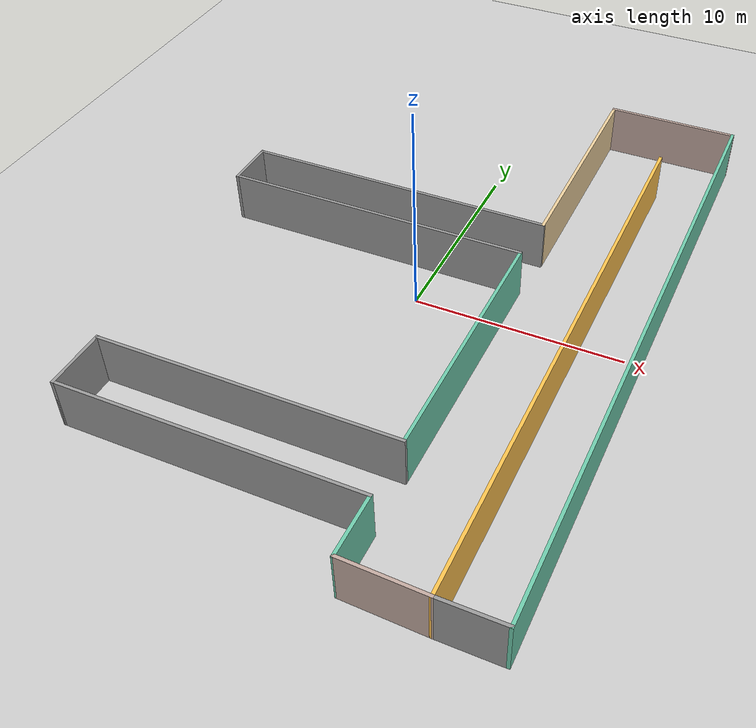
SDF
<?xml version="1.0" ?>
<sdf version="1.6">
  <world name="default">
    <include>
      <uri>model://sun</uri>
    </include>
    <include>
      <uri>model://ground_plane</uri>
    </include>
    <include>
      <uri>model://simple_test_model</uri>
      <pose>0 0 0 0 0 0</pose>
    </include>
  </world>
</sdf>

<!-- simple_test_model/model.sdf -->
<sdf version='1.6'>
  <model name='simple_test_model'>
    <pose frame=''>-17.6763 -7.34331 0 0 -0 0</pose>
    <link name='Wall_14'>
      <collision name='Wall_14_Collision'>
        <geometry>
          <box>
            <size>28.25 0.15 2.5</size>
          </box>
        </geometry>
        <pose frame=''>0 0 1.25 0 -0 0</pose>
      </collision>
      <visual name='Wall_14_Visual'>
        <pose frame=''>0 0 1.25 0 -0 0</pose>
        <geometry>
          <box>
            <size>28.25 0.15 2.5</size>
          </box>
        </geometry>
        <material>
          <script>
            <uri>file://media/materials/scripts/gazebo.material</uri>
            <name>Gazebo/Grey</name>
          </script>
          <ambient>1 0.764706 0.305882 1</ambient>
        </material>
      </visual>
      <pose frame=''>7.875 -1.74901 0 0 -0 1.5708</pose>
    </link>
    <link name='Wall_17'>
      <collision name='Wall_17_Collision'>
        <geometry>
          <box>
            <size>3 0.15 2.5</size>
          </box>
        </geometry>
        <pose frame=''>0 0 1.25 0 -0 0</pose>
      </collision>
      <visual name='Wall_17_Visual'>
        <pose frame=''>0 0 1.25 0 -0 0</pose>
        <geometry>
          <box>
            <size>3 0.15 2.5</size>
          </box>
        </geometry>
        <material>
          <script>
            <uri>file://media/materials/scripts/gazebo.material</uri>
            <name>Gazebo/Grey</name>
          </script>
          <ambient>1 1 1 1</ambient>
        </material>
      </visual>
      <pose frame=''>9.3 -15.799 0 0 -0 0</pose>
    </link>
    <link name='Wall_18'>
      <collision name='Wall_18_Collision'>
        <geometry>
          <box>
            <size>31.75 0.15 2.5</size>
          </box>
        </geometry>
        <pose frame=''>0 0 1.25 0 -0 0</pose>
      </collision>
      <visual name='Wall_18_Visual'>
        <pose frame=''>0 0 1.25 0 -0 0</pose>
        <geometry>
          <box>
            <size>31.75 0.15 2.5</size>
          </box>
        </geometry>
        <material>
          <script>
            <uri>file://media/materials/scripts/gazebo.material</uri>
            <name>Gazebo/Grey</name>
          </script>
          <ambient>0.435294 0.796078 0.67451 1</ambient>
        </material>
      </visual>
      <pose frame=''>10.725 0.000986 0 0 -0 1.5708</pose>
    </link>
    <link name='Wall_19'>
      <collision name='Wall_19_Collision'>
        <geometry>
          <box>
            <size>6.5 0.15 2.5</size>
          </box>
        </geometry>
        <pose frame=''>0 0 1.25 0 -0 0</pose>
      </collision>
      <visual name='Wall_19_Visual'>
        <pose frame=''>0 0 1.25 0 -0 0</pose>
        <geometry>
          <box>
            <size>6.5 0.15 2.5</size>
          </box>
        </geometry>
        <material>
          <script>
            <uri>file://media/materials/scripts/gazebo.material</uri>
            <name>Gazebo/Grey</name>
          </script>
          <ambient>0.760784 0.662745 0.627451 1</ambient>
        </material>
      </visual>
      <pose frame=''>7.55 15.801 0 0 -0 3.14159</pose>
    </link>
    <link name='Wall_20'>
      <collision name='Wall_20_Collision'>
        <geometry>
          <box>
            <size>11.25 0.15 2.5</size>
          </box>
        </geometry>
        <pose frame=''>0 0 1.25 0 -0 0</pose>
      </collision>
      <visual name='Wall_20_Visual'>
        <pose frame=''>0 0 1.25 0 -0 0</pose>
        <geometry>
          <box>
            <size>11.25 0.15 2.5</size>
          </box>
        </geometry>
        <material>
          <script>
            <uri>file://media/materials/scripts/gazebo.material</uri>
            <name>Gazebo/Grey</name>
          </script>
          <ambient>0.921569 0.807843 0.615686 1</ambient>
        </material>
      </visual>
      <pose frame=''>4.375 10.251 0 0 0 -1.5708</pose>
    </link>
    <link name='Wall_21'>
      <collision name='Wall_21_Collision'>
        <geometry>
          <box>
            <size>15.25 0.15 2.5</size>
          </box>
        </geometry>
        <pose frame=''>0 0 1.25 0 -0 0</pose>
      </collision>
      <visual name='Wall_21_Visual'>
        <pose frame=''>0 0 1.25 0 -0 0</pose>
        <geometry>
          <box>
            <size>15.25 0.15 2.5</size>
          </box>
        </geometry>
        <material>
          <script>
            <uri>file://media/materials/scripts/gazebo.material</uri>
            <name>Gazebo/Grey</name>
          </script>
          <ambient>1 1 1 1</ambient>
        </material>
      </visual>
      <pose frame=''>-3.175 4.70099 0 0 -0 3.14159</pose>
    </link>
    <link name='Wall_22'>
      <collision name='Wall_22_Collision'>
        <geometry>
          <box>
            <size>2.5 0.15 2.5</size>
          </box>
        </geometry>
        <pose frame=''>0 0 1.25 0 -0 0</pose>
      </collision>
      <visual name='Wall_22_Visual'>
        <pose frame=''>0 0 1.25 0 -0 0</pose>
        <geometry>
          <box>
            <size>2.5 0.15 2.5</size>
          </box>
        </geometry>
        <material>
          <script>
            <uri>file://media/materials/scripts/gazebo.material</uri>
            <name>Gazebo/Grey</name>
          </script>
          <ambient>1 1 1 1</ambient>
        </material>
      </visual>
      <pose frame=''>-10.725 3.52598 0 0 0 -1.5708</pose>
    </link>
    <link name='Wall_23'>
      <collision name='Wall_23_Collision'>
        <geometry>
          <box>
            <size>15 0.15 2.5</size>
          </box>
        </geometry>
        <pose frame=''>0 0 1.25 0 -0 0</pose>
      </collision>
      <visual name='Wall_23_Visual'>
        <pose frame=''>0 0 1.25 0 -0 0</pose>
        <geometry>
          <box>
            <size>15 0.15 2.5</size>
          </box>
        </geometry>
        <material>
          <script>
            <uri>file://media/materials/scripts/gazebo.material</uri>
            <name>Gazebo/Grey</name>
          </script>
          <ambient>1 1 1 1</ambient>
        </material>
      </visual>
      <pose frame=''>-3.3 2.35099 0 0 -0 0</pose>
    </link>
    <link name='Wall_24'>
      <collision name='Wall_24_Collision'>
        <geometry>
          <box>
            <size>12.5 0.15 2.5</size>
          </box>
        </geometry>
        <pose frame=''>0 0 1.25 0 -0 0</pose>
      </collision>
      <visual name='Wall_24_Visual'>
        <pose frame=''>0 0 1.25 0 -0 0</pose>
        <geometry>
          <box>
            <size>12.5 0.15 2.5</size>
          </box>
        </geometry>
        <material>
          <script>
            <uri>file://media/materials/scripts/gazebo.material</uri>
            <name>Gazebo/Grey</name>
          </script>
          <ambient>0.435294 0.796078 0.67451 1</ambient>
        </material>
      </visual>
      <pose frame=''>4.125 -3.82401 0 0 0 -1.5708</pose>
    </link>
    <link name='Wall_25'>
      <collision name='Wall_25_Collision'>
        <geometry>
          <box>
            <size>14.25 0.15 2.5</size>
          </box>
        </geometry>
        <pose frame=''>0 0 1.25 0 -0 0</pose>
      </collision>
      <visual name='Wall_25_Visual'>
        <pose frame=''>0 0 1.25 0 -0 0</pose>
        <geometry>
          <box>
            <size>14.25 0.15 2.5</size>
          </box>
        </geometry>
        <material>
          <script>
            <uri>file://media/materials/scripts/gazebo.material</uri>
            <name>Gazebo/Grey</name>
          </script>
          <ambient>1 1 1 1</ambient>
        </material>
      </visual>
      <pose frame=''>-2.925 -9.99901 0 0 -0 3.14159</pose>
    </link>
    <link name='Wall_26'>
      <collision name='Wall_26_Collision'>
        <geometry>
          <box>
            <size>3 0.15 2.5</size>
          </box>
        </geometry>
        <pose frame=''>0 0 1.25 0 -0 0</pose>
      </collision>
      <visual name='Wall_26_Visual'>
        <pose frame=''>0 0 1.25 0 -0 0</pose>
        <geometry>
          <box>
            <size>3 0.15 2.5</size>
          </box>
        </geometry>
        <material>
          <script>
            <uri>file://media/materials/scripts/gazebo.material</uri>
            <name>Gazebo/Grey</name>
          </script>
          <ambient>1 1 1 1</ambient>
        </material>
      </visual>
      <pose frame=''>-9.975 -11.424 0 0 0 -1.5708</pose>
    </link>
    <link name='Wall_27'>
      <collision name='Wall_27_Collision'>
        <geometry>
          <box>
            <size>14.25 0.15 2.5</size>
          </box>
        </geometry>
        <pose frame=''>0 0 1.25 0 -0 0</pose>
      </collision>
      <visual name='Wall_27_Visual'>
        <pose frame=''>0 0 1.25 0 -0 0</pose>
        <geometry>
          <box>
            <size>14.25 0.15 2.5</size>
          </box>
        </geometry>
        <material>
          <script>
            <uri>file://media/materials/scripts/gazebo.material</uri>
            <name>Gazebo/Grey</name>
          </script>
          <ambient>1 1 1 1</ambient>
        </material>
      </visual>
      <pose frame=''>-2.925 -12.849 0 0 -0 0</pose>
    </link>
    <link name='Wall_28'>
      <collision name='Wall_28_Collision'>
        <geometry>
          <box>
            <size>3 0.15 2.5</size>
          </box>
        </geometry>
        <pose frame=''>0 0 1.25 0 -0 0</pose>
      </collision>
      <visual name='Wall_28_Visual'>
        <pose frame=''>0 0 1.25 0 -0 0</pose>
        <geometry>
          <box>
            <size>3 0.15 2.5</size>
          </box>
        </geometry>
        <material>
          <script>
            <uri>file://media/materials/scripts/gazebo.material</uri>
            <name>Gazebo/Grey</name>
          </script>
          <ambient>0.435294 0.796078 0.67451 1</ambient>
        </material>
      </visual>
      <pose frame=''>4.125 -14.274 0 0 0 -1.5708</pose>
    </link>
    <link name='Wall_29'>
      <collision name='Wall_29_Collision'>
        <geometry>
          <box>
            <size>3.90133 0.15 2.5</size>
          </box>
        </geometry>
        <pose frame=''>0 0 1.25 0 -0 0</pose>
      </collision>
      <visual name='Wall_29_Visual'>
        <pose frame=''>0 0 1.25 0 -0 0</pose>
        <geometry>
          <box>
            <size>3.90133 0.15 2.5</size>
          </box>
        </geometry>
        <material>
          <script>
            <uri>file://media/materials/scripts/gazebo.material</uri>
            <name>Gazebo/Grey</name>
          </script>
          <ambient>0.760784 0.662745 0.627451 1</ambient>
        </material>
      </visual>
      <pose frame=''>6 -15.749 0 0 0 -0.02666</pose>
    </link>
    <static>1</static>
  </model>
</sdf>
